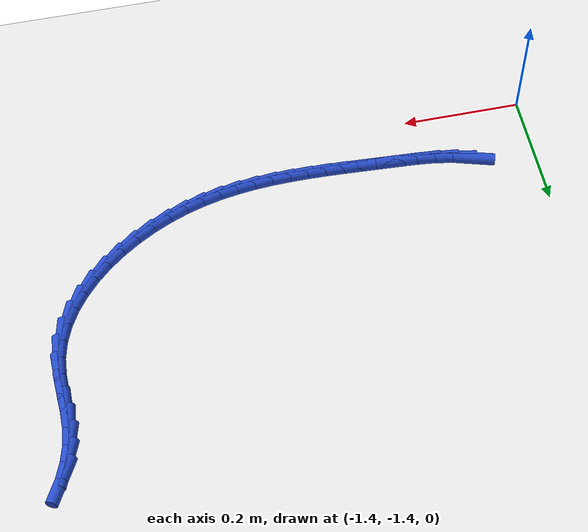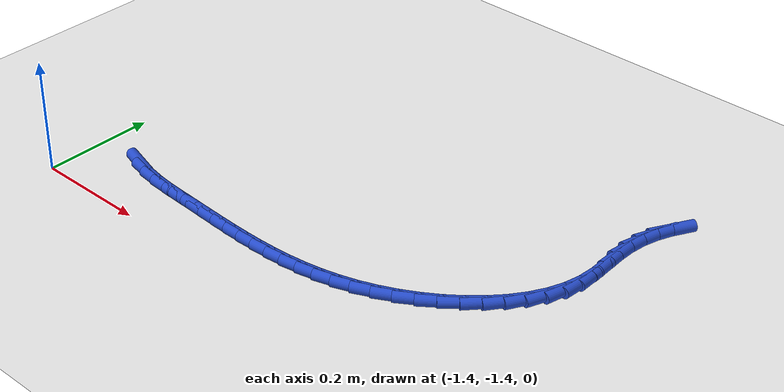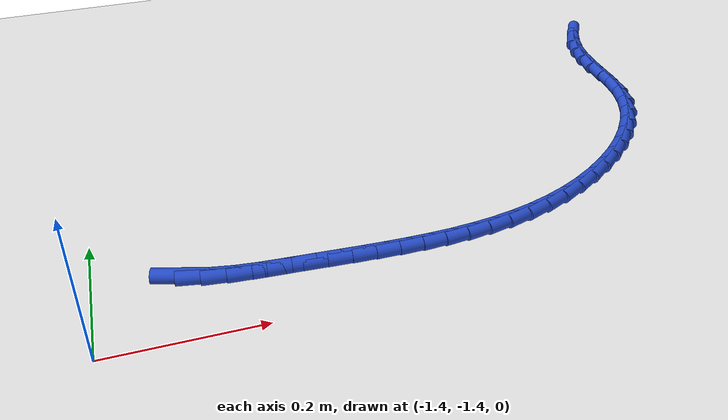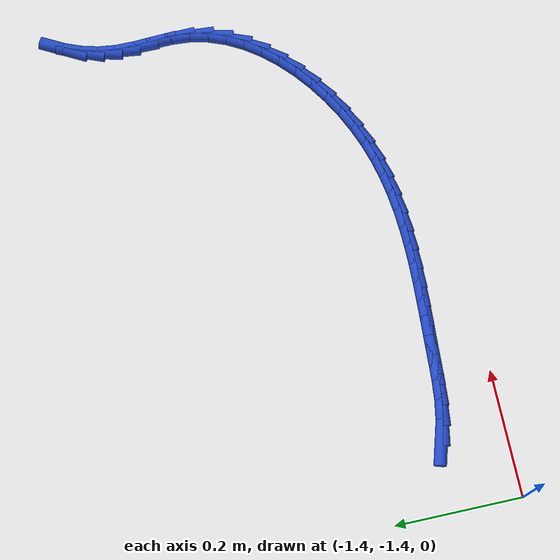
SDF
<sdf version="1.6">
 <world name="default">
  <model name="ground_plane">
   <static>1</static>
   <link name="link">
    <collision name="collision">
     <geometry><plane><normal>0 0 1</normal><size>100 100</size></plane></geometry>
     <surface><friction><ode><mu>100</mu><mu2>50</mu2></ode></friction></surface>
    </collision>
    <visual name="visual">
     <cast_shadows>0</cast_shadows>
     <geometry><plane><normal>0 0 1</normal><size>100 100</size></plane></geometry>
     <material>
      <script><uri>file://media/materials/scripts/gazebo.material</uri><name>Gazebo/WhiteGlow</name></script>
     </material>
    </visual>
   </link>
  </model>
  <model name="line">
   <link name="link_212">
    <pose>-1.2894906332587976 -1.299353563360845 0.01 0 1.57 -0.28667245076374215</pose>
    <collision name="collision">
     <geometry><cylinder><radius>0.01</radius><length>0.08</length></cylinder></geometry>
    </collision>
    <visual name="visual">
     <material>
      <script><name>Gazebo/Blue</name><uri>file://media/materials/scripts/gazebo.material</uri></script>
     </material>
     <geometry><cylinder><radius>0.01</radius><length>0.08</length></cylinder></geometry>
    </visual>
   </link>
   <link name="link_213">
    <pose>-1.2606573634625753 -1.3078533950460784 0.01 0 1.57 -0.1785683722232311</pose>
    <collision name="collision">
     <geometry><cylinder><radius>0.01</radius><length>0.08</length></cylinder></geometry>
    </collision>
    <visual name="visual">
     <material>
      <script><name>Gazebo/Blue</name><uri>file://media/materials/scripts/gazebo.material</uri></script>
     </material>
     <geometry><cylinder><radius>0.01</radius><length>0.08</length></cylinder></geometry>
    </visual>
   </link>
   <link name="link_214">
    <pose>-1.2307689315547232 -1.3132479844259044 0.01 0 1.57 -0.10439601302660674</pose>
    <collision name="collision">
     <geometry><cylinder><radius>0.01</radius><length>0.08</length></cylinder></geometry>
    </collision>
    <visual name="visual">
     <material>
      <script><name>Gazebo/Blue</name><uri>file://media/materials/scripts/gazebo.material</uri></script>
     </material>
     <geometry><cylinder><radius>0.01</radius><length>0.08</length></cylinder></geometry>
    </visual>
   </link>
   <link name="link_215">
    <pose>-1.2001420503115514 -1.316456974955307 0.01 0 1.57 -0.06255564915590936</pose>
    <collision name="collision">
     <geometry><cylinder><radius>0.01</radius><length>0.08</length></cylinder></geometry>
    </collision>
    <visual name="visual">
     <material>
      <script><name>Gazebo/Blue</name><uri>file://media/materials/scripts/gazebo.material</uri></script>
     </material>
     <geometry><cylinder><radius>0.01</radius><length>0.08</length></cylinder></geometry>
    </visual>
   </link>
   <link name="link_216">
    <pose>-1.16909381945937 -1.3184017546300488 0.01 0 1.57 -0.051055730065085625</pose>
    <collision name="collision">
     <geometry><cylinder><radius>0.01</radius><length>0.08</length></cylinder></geometry>
    </collision>
    <visual name="visual">
     <material>
      <script><name>Gazebo/Blue</name><uri>file://media/materials/scripts/gazebo.material</uri></script>
     </material>
     <geometry><cylinder><radius>0.01</radius><length>0.08</length></cylinder></geometry>
    </visual>
   </link>
   <link name="link_217">
    <pose>-1.137938628245917 -1.3199937892154758 0.01 0 1.57 -0.0545072095924612</pose>
    <collision name="collision">
     <geometry><cylinder><radius>0.01</radius><length>0.08</length></cylinder></geometry>
    </collision>
    <visual name="visual">
     <material>
      <script><name>Gazebo/Blue</name><uri>file://media/materials/scripts/gazebo.material</uri></script>
     </material>
     <geometry><cylinder><radius>0.01</radius><length>0.08</length></cylinder></geometry>
    </visual>
   </link>
   <link name="link_218">
    <pose>-1.106866458149661 -1.3216891258046726 0.01 0 1.57 -0.05223302952610713</pose>
    <collision name="collision">
     <geometry><cylinder><radius>0.01</radius><length>0.08</length></cylinder></geometry>
    </collision>
    <visual name="visual">
     <material>
      <script><name>Gazebo/Blue</name><uri>file://media/materials/scripts/gazebo.material</uri></script>
     </material>
     <geometry><cylinder><radius>0.01</radius><length>0.08</length></cylinder></geometry>
    </visual>
   </link>
   <link name="link_219">
    <pose>-1.0758937135453457 -1.3233083989712697 0.01 0 1.57 -0.04262642403270081</pose>
    <collision name="collision">
     <geometry><cylinder><radius>0.01</radius><length>0.08</length></cylinder></geometry>
    </collision>
    <visual name="visual">
     <material>
      <script><name>Gazebo/Blue</name><uri>file://media/materials/scripts/gazebo.material</uri></script>
     </material>
     <geometry><cylinder><radius>0.01</radius><length>0.08</length></cylinder></geometry>
    </visual>
   </link>
   <link name="link_220">
    <pose>-1.0450239112290851 -1.3246250658177234 0.01 0 1.57 -0.025593631519441662</pose>
    <collision name="collision">
     <geometry><cylinder><radius>0.01</radius><length>0.08</length></cylinder></geometry>
    </collision>
    <visual name="visual">
     <material>
      <script><name>Gazebo/Blue</name><uri>file://media/materials/scripts/gazebo.material</uri></script>
     </material>
     <geometry><cylinder><radius>0.01</radius><length>0.08</length></cylinder></geometry>
    </visual>
   </link>
   <link name="link_221">
    <pose>-1.0142605679969925 -1.3254125834464885 0.01 0 1.57 -0.001038238368070707</pose>
    <collision name="collision">
     <geometry><cylinder><radius>0.01</radius><length>0.08</length></cylinder></geometry>
    </collision>
    <visual name="visual">
     <material>
      <script><name>Gazebo/Blue</name><uri>file://media/materials/scripts/gazebo.material</uri></script>
     </material>
     <geometry><cylinder><radius>0.01</radius><length>0.08</length></cylinder></geometry>
    </visual>
   </link>
   <link name="link_222">
    <pose>-0.9836072006451815 -1.325444408960019 0.01 0 1.57 0.031110241038476837</pose>
    <collision name="collision">
     <geometry><cylinder><radius>0.01</radius><length>0.08</length></cylinder></geometry>
    </collision>
    <visual name="visual">
     <material>
      <script><name>Gazebo/Blue</name><uri>file://media/materials/scripts/gazebo.material</uri></script>
     </material>
     <geometry><cylinder><radius>0.01</radius><length>0.08</length></cylinder></geometry>
    </visual>
   </link>
   <link name="link_223">
    <pose>-0.9530673259697661 -1.3244939994607712 0.01 0 1.57 0.07085371368016516</pose>
    <collision name="collision">
     <geometry><cylinder><radius>0.01</radius><length>0.08</length></cylinder></geometry>
    </collision>
    <visual name="visual">
     <material>
      <script><name>Gazebo/Blue</name><uri>file://media/materials/scripts/gazebo.material</uri></script>
     </material>
     <geometry><cylinder><radius>0.01</radius><length>0.08</length></cylinder></geometry>
    </visual>
   </link>
   <link name="link_224">
    <pose>-0.9226444607668591 -1.3223348120511993 0.01 0 1.57 0.11806975168391529</pose>
    <collision name="collision">
     <geometry><cylinder><radius>0.01</radius><length>0.08</length></cylinder></geometry>
    </collision>
    <visual name="visual">
     <material>
      <script><name>Gazebo/Blue</name><uri>file://media/materials/scripts/gazebo.material</uri></script>
     </material>
     <geometry><cylinder><radius>0.01</radius><length>0.08</length></cylinder></geometry>
    </visual>
   </link>
   <link name="link_225">
    <pose>-0.8923421218325748 -1.3187403038337582 0.01 0 1.57 0.1724472318093852</pose>
    <collision name="collision">
     <geometry><cylinder><radius>0.01</radius><length>0.08</length></cylinder></geometry>
    </collision>
    <visual name="visual">
     <material>
      <script><name>Gazebo/Blue</name><uri>file://media/materials/scripts/gazebo.material</uri></script>
     </material>
     <geometry><cylinder><radius>0.01</radius><length>0.08</length></cylinder></geometry>
    </visual>
   </link>
   <link name="link_226">
    <pose>-0.862163825963026 -1.3134839319109037 0.01 0 1.57 0.2334232432536733</pose>
    <collision name="collision">
     <geometry><cylinder><radius>0.01</radius><length>0.08</length></cylinder></geometry>
    </collision>
    <visual name="visual">
     <material>
      <script><name>Gazebo/Blue</name><uri>file://media/materials/scripts/gazebo.material</uri></script>
     </material>
     <geometry><cylinder><radius>0.01</radius><length>0.08</length></cylinder></geometry>
    </visual>
   </link>
   <link name="link_227">
    <pose>-0.8321130899543274 -1.3063391533850897 0.01 0 1.57 0.3001370427301979</pose>
    <collision name="collision">
     <geometry><cylinder><radius>0.01</radius><length>0.08</length></cylinder></geometry>
    </collision>
    <visual name="visual">
     <material>
      <script><name>Gazebo/Blue</name><uri>file://media/materials/scripts/gazebo.material</uri></script>
     </material>
     <geometry><cylinder><radius>0.01</radius><length>0.08</length></cylinder></geometry>
    </visual>
   </link>
   <link name="link_228">
    <pose>-0.8021934306025923 -1.297079425358772 0.01 0 1.57 0.3713877868570067</pose>
    <collision name="collision">
     <geometry><cylinder><radius>0.01</radius><length>0.08</length></cylinder></geometry>
    </collision>
    <visual name="visual">
     <material>
      <script><name>Gazebo/Blue</name><uri>file://media/materials/scripts/gazebo.material</uri></script>
     </material>
     <geometry><cylinder><radius>0.01</radius><length>0.08</length></cylinder></geometry>
    </visual>
   </link>
   <link name="link_229">
    <pose>-0.7724108910902612 -1.2854803000965618 0.01 0 1.57 0.44418687802665824</pose>
    <collision name="collision">
     <geometry><cylinder><radius>0.01</radius><length>0.08</length></cylinder></geometry>
    </collision>
    <visual name="visual">
     <material>
      <script><name>Gazebo/Blue</name><uri>file://media/materials/scripts/gazebo.material</uri></script>
     </material>
     <geometry><cylinder><radius>0.01</radius><length>0.08</length></cylinder></geometry>
    </visual>
   </link>
   <link name="link_230">
    <pose>-0.7429340135268426 -1.2714520921513244 0.01 0 1.57 0.5167140491943151</pose>
    <collision name="collision">
     <geometry><cylinder><radius>0.01</radius><length>0.08</length></cylinder></geometry>
    </collision>
    <visual name="visual">
     <material>
      <script><name>Gazebo/Blue</name><uri>file://media/materials/scripts/gazebo.material</uri></script>
     </material>
     <geometry><cylinder><radius>0.01</radius><length>0.08</length></cylinder></geometry>
    </visual>
   </link>
   <link name="link_231">
    <pose>-0.7141896988615265 -1.2551193761270787 0.01 0 1.57 0.5909859341544283</pose>
    <collision name="collision">
     <geometry><cylinder><radius>0.01</radius><length>0.08</length></cylinder></geometry>
    </collision>
    <visual name="visual">
     <material>
      <script><name>Gazebo/Blue</name><uri>file://media/materials/scripts/gazebo.material</uri></script>
     </material>
     <geometry><cylinder><radius>0.01</radius><length>0.08</length></cylinder></geometry>
    </visual>
   </link>
   <link name="link_232">
    <pose>-0.6866278481400961 -1.2366258008808433 0.01 0 1.57 0.6692423357730339</pose>
    <collision name="collision">
     <geometry><cylinder><radius>0.01</radius><length>0.08</length></cylinder></geometry>
    </collision>
    <visual name="visual">
     <material>
      <script><name>Gazebo/Blue</name><uri>file://media/materials/scripts/gazebo.material</uri></script>
     </material>
     <geometry><cylinder><radius>0.01</radius><length>0.08</length></cylinder></geometry>
    </visual>
   </link>
   <link name="link_233">
    <pose>-0.6606983624083349 -1.2161150152696365 0.01 0 1.57 0.7537664289605405</pose>
    <collision name="collision">
     <geometry><cylinder><radius>0.01</radius><length>0.08</length></cylinder></geometry>
    </collision>
    <visual name="visual">
     <material>
      <script><name>Gazebo/Blue</name><uri>file://media/materials/scripts/gazebo.material</uri></script>
     </material>
     <geometry><cylinder><radius>0.01</radius><length>0.08</length></cylinder></geometry>
    </visual>
   </link>
   <link name="link_234">
    <pose>-0.6368511427120251 -1.1937306681504758 0.01 0 1.57 0.8469371245326721</pose>
    <collision name="collision">
     <geometry><cylinder><radius>0.01</radius><length>0.08</length></cylinder></geometry>
    </collision>
    <visual name="visual">
     <material>
      <script><name>Gazebo/Blue</name><uri>file://media/materials/scripts/gazebo.material</uri></script>
     </material>
     <geometry><cylinder><radius>0.01</radius><length>0.08</length></cylinder></geometry>
    </visual>
   </link>
   <link name="link_235">
    <pose>-0.6155360900969518 -1.169616408380381 0.01 0 1.57 0.9511791907551846</pose>
    <collision name="collision">
     <geometry><cylinder><radius>0.01</radius><length>0.08</length></cylinder></geometry>
    </collision>
    <visual name="visual">
     <material>
      <script><name>Gazebo/Blue</name><uri>file://media/materials/scripts/gazebo.material</uri></script>
     </material>
     <geometry><cylinder><radius>0.01</radius><length>0.08</length></cylinder></geometry>
    </visual>
   </link>
   <link name="link_236">
    <pose>-0.5972031056088977 -1.1439158848163704 0.01 0 1.57 1.0687372663021037</pose>
    <collision name="collision">
     <geometry><cylinder><radius>0.01</radius><length>0.08</length></cylinder></geometry>
    </collision>
    <visual name="visual">
     <material>
      <script><name>Gazebo/Blue</name><uri>file://media/materials/scripts/gazebo.material</uri></script>
     </material>
     <geometry><cylinder><radius>0.01</radius><length>0.08</length></cylinder></geometry>
    </visual>
   </link>
   <link name="link_237">
    <pose>-0.5823020902936454 -1.1167727463154615 0.01 0 1.57 1.2011783875605935</pose>
    <collision name="collision">
     <geometry><cylinder><radius>0.01</radius><length>0.08</length></cylinder></geometry>
    </collision>
    <visual name="visual">
     <material>
      <script><name>Gazebo/Blue</name><uri>file://media/materials/scripts/gazebo.material</uri></script>
     </material>
     <geometry><cylinder><radius>0.01</radius><length>0.08</length></cylinder></geometry>
    </visual>
   </link>
   <link name="link_238">
    <pose>-0.5712829451969788 -1.088330641734673 0.01 0 1.57 1.3485831047472765</pose>
    <collision name="collision">
     <geometry><cylinder><radius>0.01</radius><length>0.08</length></cylinder></geometry>
    </collision>
    <visual name="visual">
     <material>
      <script><name>Gazebo/Blue</name><uri>file://media/materials/scripts/gazebo.material</uri></script>
     </material>
     <geometry><cylinder><radius>0.01</radius><length>0.08</length></cylinder></geometry>
    </visual>
   </link>
   <link name="link_239">
    <pose>-0.5645955713646809 -1.0587332199310235 0.01 0 1.57 1.5006826159474427</pose>
    <collision name="collision">
     <geometry><cylinder><radius>0.01</radius><length>0.08</length></cylinder></geometry>
    </collision>
    <visual name="visual">
     <material>
      <script><name>Gazebo/Blue</name><uri>file://media/materials/scripts/gazebo.material</uri></script>
     </material>
     <geometry><cylinder><radius>0.01</radius><length>0.08</length></cylinder></geometry>
    </visual>
   </link>
   <link name="link_240">
    <pose>-0.562449147431573 -1.0281699316818307 0.01 0 1.57 -1.543607629719659</pose>
    <collision name="collision">
     <geometry><cylinder><radius>0.01</radius><length>0.08</length></cylinder></geometry>
    </collision>
    <visual name="visual">
     <material>
      <script><name>Gazebo/Blue</name><uri>file://media/materials/scripts/gazebo.material</uri></script>
     </material>
     <geometry><cylinder><radius>0.01</radius><length>0.08</length></cylinder></geometry>
    </visual>
   </link>
   <link name="link_241">
    <pose>-0.5632923334894804 -0.9971651991934134 0.01 0 1.57 -1.5221039602403574</pose>
    <collision name="collision">
     <geometry><cylinder><radius>0.01</radius><length>0.08</length></cylinder></geometry>
    </collision>
    <visual name="visual">
     <material>
      <script><name>Gazebo/Blue</name><uri>file://media/materials/scripts/gazebo.material</uri></script>
     </material>
     <geometry><cylinder><radius>0.01</radius><length>0.08</length></cylinder></geometry>
    </visual>
   </link>
   <link name="link_242">
    <pose>-0.564791928583055 -0.9663922082924986 0.01 0 1.57 1.5647560552655875</pose>
    <collision name="collision">
     <geometry><cylinder><radius>0.01</radius><length>0.08</length></cylinder></geometry>
    </collision>
    <visual name="visual">
     <material>
      <script><name>Gazebo/Blue</name><uri>file://media/materials/scripts/gazebo.material</uri></script>
     </material>
     <geometry><cylinder><radius>0.01</radius><length>0.08</length></cylinder></geometry>
    </visual>
   </link>
   <link name="link_243">
    <pose>-0.5646115186460327 -0.9365247193785713 0.01 0 1.57 1.4438355370613445</pose>
    <collision name="collision">
     <geometry><cylinder><radius>0.01</radius><length>0.08</length></cylinder></geometry>
    </collision>
    <visual name="visual">
     <material>
      <script><name>Gazebo/Blue</name><uri>file://media/materials/scripts/gazebo.material</uri></script>
     </material>
     <geometry><cylinder><radius>0.01</radius><length>0.08</length></cylinder></geometry>
    </visual>
   </link>
   <link name="link_244">
    <pose>-0.56097870487014 -0.9080649593499396 0.01 0 1.57 1.3131397771502584</pose>
    <collision name="collision">
     <geometry><cylinder><radius>0.01</radius><length>0.08</length></cylinder></geometry>
    </collision>
    <visual name="visual">
     <material>
      <script><name>Gazebo/Blue</name><uri>file://media/materials/scripts/gazebo.material</uri></script>
     </material>
     <geometry><cylinder><radius>0.01</radius><length>0.08</length></cylinder></geometry>
    </visual>
   </link>
   <link name="link_245">
    <pose>-0.5538443581050077 -0.8809910585069707 0.01 0 1.57 1.1891823548919096</pose>
    <collision name="collision">
     <geometry><cylinder><radius>0.01</radius><length>0.08</length></cylinder></geometry>
    </collision>
    <visual name="visual">
     <material>
      <script><name>Gazebo/Blue</name><uri>file://media/materials/scripts/gazebo.material</uri></script>
     </material>
     <geometry><cylinder><radius>0.01</radius><length>0.08</length></cylinder></geometry>
    </visual>
   </link>
   <link name="link_246">
    <pose>-0.5434873201334759 -0.8551814016171573 0.01 0 1.57 1.0762692835004388</pose>
    <collision name="collision">
     <geometry><cylinder><radius>0.01</radius><length>0.08</length></cylinder></geometry>
    </collision>
    <visual name="visual">
     <material>
      <script><name>Gazebo/Blue</name><uri>file://media/materials/scripts/gazebo.material</uri></script>
     </material>
     <geometry><cylinder><radius>0.01</radius><length>0.08</length></cylinder></geometry>
    </visual>
   </link>
  </model>
 </world>
</sdf>
